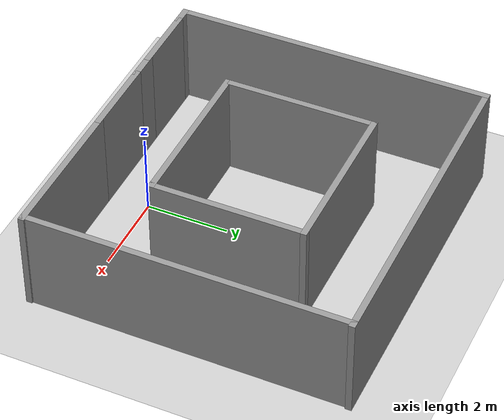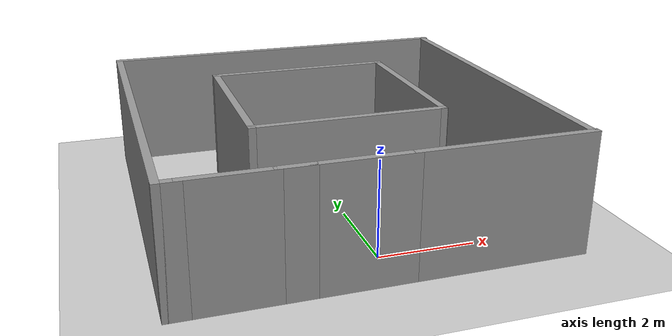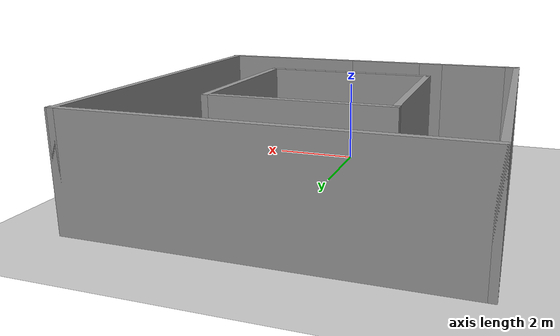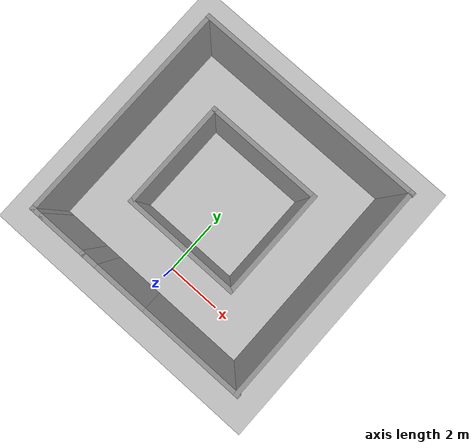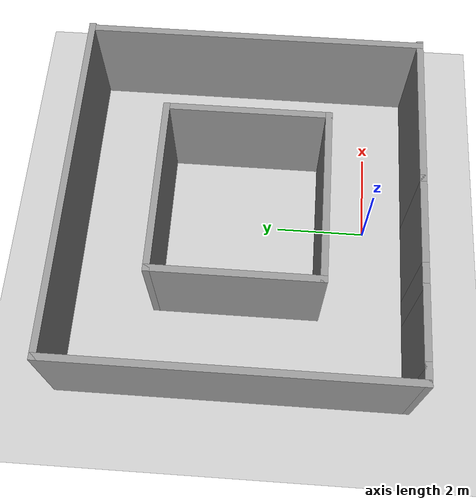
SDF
<sdf version="1.6">
 <world name="default">
  <light name="sun" type="directional">
   <pose>0 0 10 0 -0 0</pose>
   <diffuse>0.8 0.8 0.8 1</diffuse>
   <specular>0.1 0.1 0.1 1</specular>
   <attenuation>
    <range>1000</range>
    <constant>0.9</constant>
    <linear>0.01</linear>
    <quadratic>0.001</quadratic>
   </attenuation>
   <direction>-0.5 0.5 -1</direction>
  </light>
  <model name="ground_plane">
   <static>1</static>
   <link name="link">
    <collision name="collision">
     <geometry><plane><normal>0 0 1</normal><size>100 100</size></plane></geometry>
     <surface><friction><ode><mu>100</mu><mu2>50</mu2></ode></friction></surface>
    </collision>
    <visual name="visual">
     <cast_shadows>0</cast_shadows>
     <geometry><plane><normal>0 0 1</normal><size>100 100</size></plane></geometry>
     <material>
      <script><uri>file://media/materials/scripts/gazebo.material</uri><name>Gazebo/Grey</name></script>
     </material>
    </visual>
   </link>
  </model>
  <gravity>0 0 -9.8</gravity>
  <magnetic_field>6e-06 2.3e-05 -4.2e-05</magnetic_field>
  <atmosphere type="adiabatic"/>
  <physics name="default_physics" default="0" type="ode">
   <max_step_size>0.01</max_step_size>
   <real_time_factor>1</real_time_factor>
   <real_time_update_rate>0</real_time_update_rate>
  </physics>
  <scene><ambient>0.4 0.4 0.4 1</ambient><background>0.7 0.7 0.7 1</background><shadows>1</shadows></scene>
  <spherical_coordinates>
   <surface_model>EARTH_WGS84</surface_model>
   <latitude_deg>0</latitude_deg>
   <longitude_deg>0</longitude_deg>
   <elevation>0</elevation>
   <heading_deg>0</heading_deg>
  </spherical_coordinates>
  <model name="model4small">
   <pose>-0.159205 2.82 0 0 -0 0</pose>
   <link name="Wall_12">
    <collision name="Wall_12_Collision">
     <geometry><box><size>3.75 0.15 2.5</size></box></geometry>
     <pose>0 0 1.25 0 -0 0</pose>
    </collision>
    <visual name="Wall_12_Visual">
     <pose>0 0 1.25 0 -0 0</pose>
     <geometry><box><size>3.75 0.15 2.5</size></box></geometry>
     <material>
      <script><uri>file://media/materials/scripts/gazebo.material</uri><name>Gazebo/Grey</name></script>
      <ambient>1 1 1 1</ambient>
     </material>
     <meta><layer>0</layer></meta>
    </visual>
    <pose>1.87921 0.04 0 0 -0 1.5708</pose>
   </link>
   <link name="Wall_13">
    <collision name="Wall_13_Collision">
     <geometry><box><size>4 0.15 2.5</size></box></geometry>
     <pose>0 0 1.25 0 -0 0</pose>
    </collision>
    <visual name="Wall_13_Visual">
     <pose>0 0 1.25 0 -0 0</pose>
     <geometry><box><size>4 0.15 2.5</size></box></geometry>
     <material>
      <script><uri>file://media/materials/scripts/gazebo.material</uri><name>Gazebo/Grey</name></script>
      <ambient>1 1 1 1</ambient>
     </material>
     <meta><layer>0</layer></meta>
    </visual>
    <pose>-0.045795 1.84 0 0 -0 3.14159</pose>
   </link>
   <link name="Wall_14">
    <collision name="Wall_14_Collision">
     <geometry><box><size>3.75 0.15 2.5</size></box></geometry>
     <pose>0 0 1.25 0 -0 0</pose>
    </collision>
    <visual name="Wall_14_Visual">
     <pose>0 0 1.25 0 -0 0</pose>
     <geometry><box><size>3.75 0.15 2.5</size></box></geometry>
     <material>
      <script><uri>file://media/materials/scripts/gazebo.material</uri><name>Gazebo/Grey</name></script>
      <ambient>1 1 1 1</ambient>
     </material>
     <meta><layer>0</layer></meta>
    </visual>
    <pose>-1.9708 0.04 0 0 0 -1.5708</pose>
   </link>
   <link name="Wall_16">
    <collision name="Wall_16_Collision">
     <geometry><box><size>1.75 0.15 2.5</size></box></geometry>
     <pose>0 0 1.25 0 -0 0</pose>
    </collision>
    <visual name="Wall_16_Visual">
     <pose>0 0 1.25 0 -0 0</pose>
     <geometry><box><size>1.75 0.15 2.5</size></box></geometry>
     <material>
      <script><uri>file://media/materials/scripts/gazebo.material</uri><name>Gazebo/Grey</name></script>
      <ambient>1 1 1 1</ambient>
     </material>
     <meta><layer>0</layer></meta>
    </visual>
    <pose>-2.7908 -3.8 0 0 -0 3.14159</pose>
   </link>
   <link name="Wall_17">
    <collision name="Wall_17_Collision">
     <geometry><box><size>0.5 0.15 2.5</size></box></geometry>
     <pose>0 0 1.25 0 -0 0</pose>
    </collision>
    <visual name="Wall_17_Visual">
     <pose>0 0 1.25 0 -0 0</pose>
     <geometry><box><size>0.5 0.15 2.5</size></box></geometry>
     <material>
      <script><uri>file://media/materials/scripts/gazebo.material</uri><name>Gazebo/Grey</name></script>
      <ambient>1 1 1 1</ambient>
     </material>
     <meta><layer>0</layer></meta>
    </visual>
    <pose>-3.76579 -3.8 0 0 -0 3.14159</pose>
   </link>
   <link name="Wall_18">
    <collision name="Wall_18_Collision">
     <geometry><box><size>7.75 0.15 2.5</size></box></geometry>
     <pose>0 0 1.25 0 -0 0</pose>
    </collision>
    <visual name="Wall_18_Visual">
     <pose>0 0 1.25 0 -0 0</pose>
     <geometry><box><size>7.75 0.15 2.5</size></box></geometry>
     <material>
      <script><uri>file://media/materials/scripts/gazebo.material</uri><name>Gazebo/Grey</name></script>
      <ambient>1 1 1 1</ambient>
     </material>
     <meta><layer>0</layer></meta>
    </visual>
    <pose>-3.9408 0 0 0 -0 1.5708</pose>
   </link>
   <link name="Wall_19">
    <collision name="Wall_19_Collision">
     <geometry><box><size>8.03159 0.15 2.5</size></box></geometry>
     <pose>0 0 1.25 0 -0 0</pose>
    </collision>
    <visual name="Wall_19_Visual">
     <pose>0 0 1.25 0 -0 0</pose>
     <geometry><box><size>8.03159 0.15 2.5</size></box></geometry>
     <material>
      <script><uri>file://media/materials/scripts/gazebo.material</uri><name>Gazebo/Grey</name></script>
      <ambient>1 1 1 1</ambient>
     </material>
     <meta><layer>0</layer></meta>
    </visual>
    <pose>0 3.8 0 0 -0 0</pose>
   </link>
   <link name="Wall_2">
    <collision name="Wall_2_Collision">
     <geometry><box><size>2 0.15 2.5</size></box></geometry>
     <pose>0 0 1.25 0 -0 0</pose>
    </collision>
    <visual name="Wall_2_Visual">
     <pose>0 0 1.25 0 -0 0</pose>
     <geometry><box><size>2 0.15 2.5</size></box></geometry>
     <material>
      <script><uri>file://media/materials/scripts/gazebo.material</uri><name>Gazebo/Grey</name></script>
      <ambient>1 1 1 1</ambient>
     </material>
     <meta><layer>0</layer></meta>
    </visual>
    <pose>-0.465795 -3.8 0 0 -0 3.14159</pose>
   </link>
   <link name="Wall_20">
    <collision name="Wall_20_Collision">
     <geometry><box><size>7.75 0.15 2.5</size></box></geometry>
     <pose>0 0 1.25 0 -0 0</pose>
    </collision>
    <visual name="Wall_20_Visual">
     <pose>0 0 1.25 0 -0 0</pose>
     <geometry><box><size>7.75 0.15 2.5</size></box></geometry>
     <material>
      <script><uri>file://media/materials/scripts/gazebo.material</uri><name>Gazebo/Grey</name></script>
      <ambient>1 1 1 1</ambient>
     </material>
     <meta><layer>0</layer></meta>
    </visual>
    <pose>3.90057 0 0 0 0 -1.5708</pose>
   </link>
   <link name="Wall_21">
    <collision name="Wall_21_Collision">
     <geometry><box><size>3.63159 0.15 2.5</size></box></geometry>
     <pose>0 0 1.25 0 -0 0</pose>
    </collision>
    <visual name="Wall_21_Visual">
     <pose>0 0 1.25 0 -0 0</pose>
     <geometry><box><size>3.63159 0.15 2.5</size></box></geometry>
     <material>
      <script><uri>file://media/materials/scripts/gazebo.material</uri><name>Gazebo/Grey</name></script>
      <ambient>1 1 1 1</ambient>
     </material>
     <meta><layer>0</layer></meta>
    </visual>
    <pose>2.2 -3.8 0 0 -0 3.14159</pose>
   </link>
   <link name="Wall_3">
    <collision name="Wall_3_Collision">
     <geometry><box><size>0.75 0.15 2.5</size></box></geometry>
     <pose>0 0 1.25 0 -0 0</pose>
    </collision>
    <visual name="Wall_3_Visual">
     <pose>0 0 1.25 0 -0 0</pose>
     <geometry><box><size>0.75 0.15 2.5</size></box></geometry>
     <material>
      <script><uri>file://media/materials/scripts/gazebo.material</uri><name>Gazebo/Grey</name></script>
      <ambient>1 1 1 1</ambient>
     </material>
     <meta><layer>0</layer></meta>
    </visual>
    <pose>-1.6908 -3.8 0 0 -0 3.14159</pose>
   </link>
   <link name="Wall_9">
    <collision name="Wall_9_Collision">
     <geometry><box><size>4 0.15 2.5</size></box></geometry>
     <pose>0 0 1.25 0 -0 0</pose>
    </collision>
    <visual name="Wall_9_Visual">
     <pose>0 0 1.25 0 -0 0</pose>
     <geometry><box><size>4 0.15 2.5</size></box></geometry>
     <material>
      <script><uri>file://media/materials/scripts/gazebo.material</uri><name>Gazebo/Grey</name></script>
      <ambient>1 1 1 1</ambient>
     </material>
     <meta><layer>0</layer></meta>
    </visual>
    <pose>-0.045795 -1.76 0 0 -0 0</pose>
   </link>
   <static>1</static>
  </model>
 </world>
</sdf>
